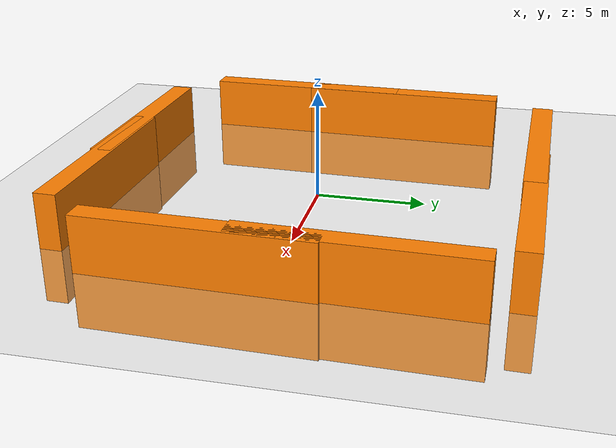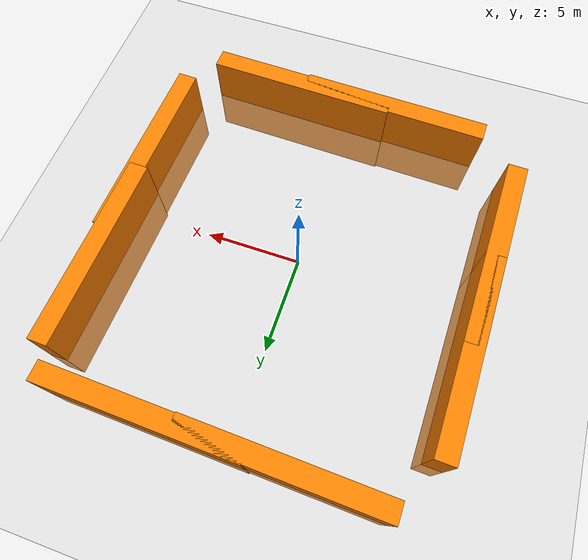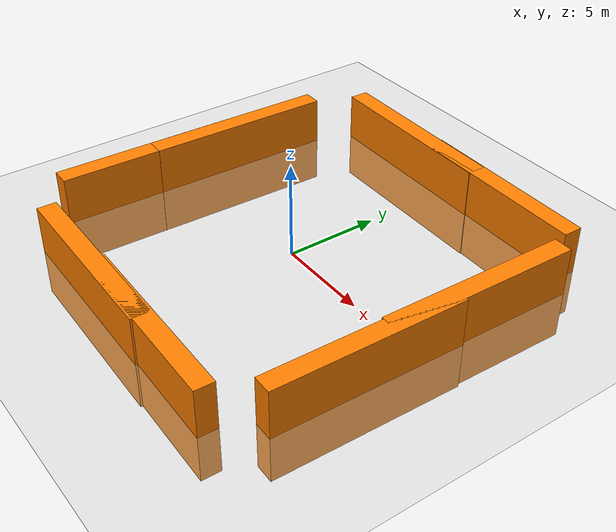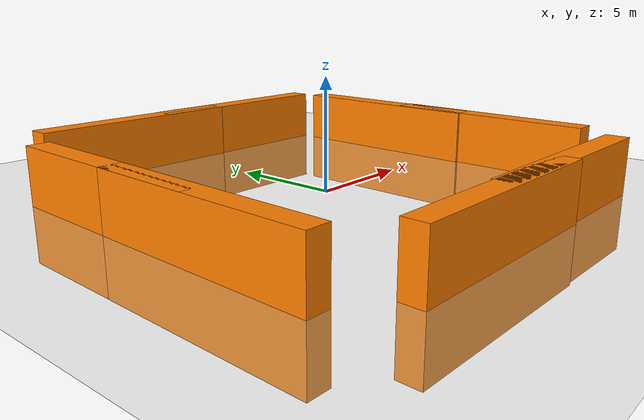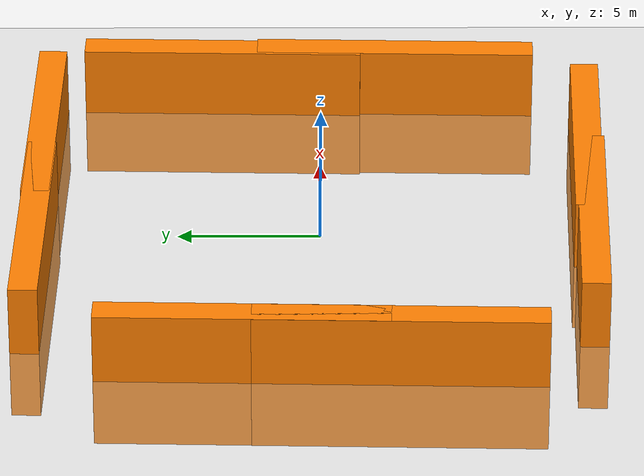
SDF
<sdf version="1.7">
 <world name="default">
  <light name="sun" type="directional">
   <pose>0 0 10 0 -0 0</pose>
   <diffuse>0.8 0.8 0.8 1</diffuse>
   <specular>0.2 0.2 0.2 1</specular>
   <attenuation>
    <range>1000</range>
    <constant>0.9</constant>
    <linear>0.01</linear>
    <quadratic>0.001</quadratic>
   </attenuation>
   <direction>-0.5 0.1 -0.9</direction>
   <spot><inner_angle>0</inner_angle><outer_angle>0</outer_angle><falloff>0</falloff></spot>
  </light>
  <model name="ground_plane">
   <static>1</static>
   <link name="link">
    <collision name="collision">
     <geometry><plane><normal>0 0 1</normal><size>100 100</size></plane></geometry>
     <surface>
      <contact><collide_bitmask>65535</collide_bitmask></contact>
      <friction><ode><mu>100</mu><mu2>50</mu2></ode></friction>
     </surface>
    </collision>
    <visual name="visual">
     <cast_shadows>0</cast_shadows>
     <geometry><plane><normal>0 0 1</normal><size>100 100</size></plane></geometry>
     <material>
      <script><uri>file://media/materials/scripts/gazebo.material</uri><name>Gazebo/Grey</name></script>
     </material>
    </visual>
   </link>
  </model>
  <gravity>0 0 -9.8</gravity>
  <magnetic_field>6e-06 2.3e-05 -4.2e-05</magnetic_field>
  <atmosphere type="adiabatic"/>
  <physics type="ode">
   <max_step_size>0.001</max_step_size>
   <real_time_factor>1</real_time_factor>
   <real_time_update_rate>1000</real_time_update_rate>
  </physics>
  <scene><ambient>0.4 0.4 0.4 1</ambient><background>0.7 0.7 0.7 1</background><shadows>1</shadows></scene>
  <audio><device>default</device></audio>
  <spherical_coordinates>
   <surface_model>EARTH_WGS84</surface_model>
   <latitude_deg>0</latitude_deg>
   <longitude_deg>0</longitude_deg>
   <elevation>0</elevation>
   <heading_deg>0</heading_deg>
  </spherical_coordinates>
  <model name="wall">
   <link name="link">
    <inertial>
     <mass>10000</mass>
     <inertia><ixx>1666.67</ixx><ixy>0</ixy><ixz>0</ixz><iyy>1666.67</iyy><iyz>0</iyz><izz>1666.67</izz></inertia>
    </inertial>
    <self_collide>1</self_collide>
    <kinematic>1</kinematic>
    <visual name="visual">
     <geometry><box><size>1 10 5</size></box></geometry>
     <material>
      <script><name>Gazebo/Grey</name><uri>file://media/materials/scripts/gazebo.material</uri></script>
      <shader type="pixel"><normal_map>__default__</normal_map></shader>
      <ambient>1 0.5 0 1</ambient>
      <diffuse>1 0.5 0 1</diffuse>
      <specular>0.2 0.1 0 1</specular>
      <emissive>0.1 0.05 0 1</emissive>
     </material>
    </visual>
    <collision name="collision">
     <geometry><box><size>1 10 5</size></box></geometry>
     <surface>
      <friction>
       <ode><mu>1</mu><mu2>1</mu2><fdir1>0 0 0</fdir1><slip1>0</slip1><slip2>0</slip2></ode>
       <torsional>
        <coefficient>1</coefficient>
        <patch_radius>0</patch_radius>
        <surface_radius>0</surface_radius>
        <use_patch_radius>1</use_patch_radius>
        <ode><slip>0</slip></ode>
       </torsional>
      </friction>
      <bounce><restitution_coefficient>0</restitution_coefficient><threshold>1e+06</threshold></bounce>
      <contact>
       <collide_without_contact>0</collide_without_contact>
       <collide_without_contact_bitmask>1</collide_without_contact_bitmask>
       <collide_bitmask>1</collide_bitmask>
       <ode>
        <soft_cfm>0</soft_cfm>
        <soft_erp>0.2</soft_erp>
        <kp>1e+13</kp>
        <kd>1</kd>
        <max_vel>0.01</max_vel>
        <min_depth>0</min_depth>
       </ode>
       <bullet>
        <split_impulse>1</split_impulse>
        <split_impulse_penetration_threshold>-0.01</split_impulse_penetration_threshold>
        <soft_cfm>0</soft_cfm>
        <soft_erp>0.2</soft_erp>
        <kp>1e+13</kp>
        <kd>1</kd>
       </bullet>
      </contact>
     </surface>
    </collision>
   </link>
   <static>0</static>
   <pose>2.9215 -9.41762 0 0 0 -1.59641</pose>
  </model>
  <model name="wall_clone">
   <link name="link">
    <inertial>
     <mass>10000</mass>
     <inertia><ixx>1666.67</ixx><ixy>0</ixy><ixz>0</ixz><iyy>1666.67</iyy><iyz>0</iyz><izz>1666.67</izz></inertia>
    </inertial>
    <self_collide>1</self_collide>
    <kinematic>1</kinematic>
    <visual name="visual">
     <geometry><box><size>1 10 5</size></box></geometry>
     <material>
      <script><name>Gazebo/Grey</name><uri>file://media/materials/scripts/gazebo.material</uri></script>
      <shader type="pixel"><normal_map>__default__</normal_map></shader>
      <ambient>1 0.5 0 1</ambient>
      <diffuse>1 0.5 0 1</diffuse>
      <specular>0.2 0.1 0 1</specular>
      <emissive>0.1 0.05 0 1</emissive>
     </material>
    </visual>
    <collision name="collision">
     <geometry><box><size>1 10 5</size></box></geometry>
     <surface>
      <friction>
       <ode><mu>1</mu><mu2>1</mu2><fdir1>0 0 0</fdir1><slip1>0</slip1><slip2>0</slip2></ode>
       <torsional>
        <coefficient>1</coefficient>
        <patch_radius>0</patch_radius>
        <surface_radius>0</surface_radius>
        <use_patch_radius>1</use_patch_radius>
        <ode><slip>0</slip></ode>
       </torsional>
      </friction>
      <bounce><restitution_coefficient>0</restitution_coefficient><threshold>1e+06</threshold></bounce>
      <contact>
       <collide_without_contact>0</collide_without_contact>
       <collide_without_contact_bitmask>1</collide_without_contact_bitmask>
       <collide_bitmask>1</collide_bitmask>
       <ode>
        <soft_cfm>0</soft_cfm>
        <soft_erp>0.2</soft_erp>
        <kp>1e+13</kp>
        <kd>1</kd>
        <max_vel>0.01</max_vel>
        <min_depth>0</min_depth>
       </ode>
       <bullet>
        <split_impulse>1</split_impulse>
        <split_impulse_penetration_threshold>-0.01</split_impulse_penetration_threshold>
        <soft_cfm>0</soft_cfm>
        <soft_erp>0.2</soft_erp>
        <kp>1e+13</kp>
        <kd>1</kd>
       </bullet>
      </contact>
     </surface>
    </collision>
   </link>
   <static>0</static>
   <pose>-2.27459 -9.38568 0 0 0 -1.59641</pose>
  </model>
  <model name="wall_clone_0">
   <link name="link">
    <inertial>
     <mass>10000</mass>
     <inertia><ixx>1666.67</ixx><ixy>0</ixy><ixz>0</ixz><iyy>1666.67</iyy><iyz>0</iyz><izz>1666.67</izz></inertia>
    </inertial>
    <self_collide>1</self_collide>
    <kinematic>1</kinematic>
    <visual name="visual">
     <geometry><box><size>1 10 5</size></box></geometry>
     <material>
      <script><name>Gazebo/Grey</name><uri>file://media/materials/scripts/gazebo.material</uri></script>
      <shader type="pixel"><normal_map>__default__</normal_map></shader>
      <ambient>1 0.5 0 1</ambient>
      <diffuse>1 0.5 0 1</diffuse>
      <specular>0.2 0.1 0 1</specular>
      <emissive>0.1 0.05 0 1</emissive>
     </material>
    </visual>
    <collision name="collision">
     <geometry><box><size>1 10 5</size></box></geometry>
     <surface>
      <friction>
       <ode><mu>1</mu><mu2>1</mu2><fdir1>0 0 0</fdir1><slip1>0</slip1><slip2>0</slip2></ode>
       <torsional>
        <coefficient>1</coefficient>
        <patch_radius>0</patch_radius>
        <surface_radius>0</surface_radius>
        <use_patch_radius>1</use_patch_radius>
        <ode><slip>0</slip></ode>
       </torsional>
      </friction>
      <bounce><restitution_coefficient>0</restitution_coefficient><threshold>1e+06</threshold></bounce>
      <contact>
       <collide_without_contact>0</collide_without_contact>
       <collide_without_contact_bitmask>1</collide_without_contact_bitmask>
       <collide_bitmask>1</collide_bitmask>
       <ode>
        <soft_cfm>0</soft_cfm>
        <soft_erp>0.2</soft_erp>
        <kp>1e+13</kp>
        <kd>1</kd>
        <max_vel>0.01</max_vel>
        <min_depth>0</min_depth>
       </ode>
       <bullet>
        <split_impulse>1</split_impulse>
        <split_impulse_penetration_threshold>-0.01</split_impulse_penetration_threshold>
        <soft_cfm>0</soft_cfm>
        <soft_erp>0.2</soft_erp>
        <kp>1e+13</kp>
        <kd>1</kd>
       </bullet>
      </contact>
     </surface>
    </collision>
   </link>
   <static>0</static>
   <pose>3.94528 9.79326 0 0 0 -1.59641</pose>
  </model>
  <model name="wall_clone_1">
   <link name="link">
    <inertial>
     <mass>10000</mass>
     <inertia><ixx>1666.67</ixx><ixy>0</ixy><ixz>0</ixz><iyy>1666.67</iyy><iyz>0</iyz><izz>1666.67</izz></inertia>
    </inertial>
    <self_collide>1</self_collide>
    <kinematic>1</kinematic>
    <visual name="visual">
     <geometry><box><size>1 10 5</size></box></geometry>
     <material>
      <script><name>Gazebo/Grey</name><uri>file://media/materials/scripts/gazebo.material</uri></script>
      <shader type="pixel"><normal_map>__default__</normal_map></shader>
      <ambient>1 0.5 0 1</ambient>
      <diffuse>1 0.5 0 1</diffuse>
      <specular>0.2 0.1 0 1</specular>
      <emissive>0.1 0.05 0 1</emissive>
     </material>
    </visual>
    <collision name="collision">
     <geometry><box><size>1 10 5</size></box></geometry>
     <surface>
      <friction>
       <ode><mu>1</mu><mu2>1</mu2><fdir1>0 0 0</fdir1><slip1>0</slip1><slip2>0</slip2></ode>
       <torsional>
        <coefficient>1</coefficient>
        <patch_radius>0</patch_radius>
        <surface_radius>0</surface_radius>
        <use_patch_radius>1</use_patch_radius>
        <ode><slip>0</slip></ode>
       </torsional>
      </friction>
      <bounce><restitution_coefficient>0</restitution_coefficient><threshold>1e+06</threshold></bounce>
      <contact>
       <collide_without_contact>0</collide_without_contact>
       <collide_without_contact_bitmask>1</collide_without_contact_bitmask>
       <collide_bitmask>1</collide_bitmask>
       <ode>
        <soft_cfm>0</soft_cfm>
        <soft_erp>0.2</soft_erp>
        <kp>1e+13</kp>
        <kd>1</kd>
        <max_vel>0.01</max_vel>
        <min_depth>0</min_depth>
       </ode>
       <bullet>
        <split_impulse>1</split_impulse>
        <split_impulse_penetration_threshold>-0.01</split_impulse_penetration_threshold>
        <soft_cfm>0</soft_cfm>
        <soft_erp>0.2</soft_erp>
        <kp>1e+13</kp>
        <kd>1</kd>
       </bullet>
      </contact>
     </surface>
    </collision>
   </link>
   <static>0</static>
   <pose>-2.65566 9.92036 0 0 0 -1.59641</pose>
  </model>
  <model name="wall_clone_2">
   <link name="link">
    <inertial>
     <mass>10000</mass>
     <inertia><ixx>1666.67</ixx><ixy>0</ixy><ixz>0</ixz><iyy>1666.67</iyy><iyz>0</iyz><izz>1666.67</izz></inertia>
    </inertial>
    <self_collide>1</self_collide>
    <kinematic>1</kinematic>
    <visual name="visual">
     <geometry><box><size>1 10 5</size></box></geometry>
     <material>
      <script><name>Gazebo/Grey</name><uri>file://media/materials/scripts/gazebo.material</uri></script>
      <shader type="pixel"><normal_map>__default__</normal_map></shader>
      <ambient>1 0.5 0 1</ambient>
      <diffuse>1 0.5 0 1</diffuse>
      <specular>0.2 0.1 0 1</specular>
      <emissive>0.1 0.05 0 1</emissive>
     </material>
    </visual>
    <collision name="collision">
     <geometry><box><size>1 10 5</size></box></geometry>
     <surface>
      <friction>
       <ode><mu>1</mu><mu2>1</mu2><fdir1>0 0 0</fdir1><slip1>0</slip1><slip2>0</slip2></ode>
       <torsional>
        <coefficient>1</coefficient>
        <patch_radius>0</patch_radius>
        <surface_radius>0</surface_radius>
        <use_patch_radius>1</use_patch_radius>
        <ode><slip>0</slip></ode>
       </torsional>
      </friction>
      <bounce><restitution_coefficient>0</restitution_coefficient><threshold>1e+06</threshold></bounce>
      <contact>
       <collide_without_contact>0</collide_without_contact>
       <collide_without_contact_bitmask>1</collide_without_contact_bitmask>
       <collide_bitmask>1</collide_bitmask>
       <ode>
        <soft_cfm>0</soft_cfm>
        <soft_erp>0.2</soft_erp>
        <kp>1e+13</kp>
        <kd>1</kd>
        <max_vel>0.01</max_vel>
        <min_depth>0</min_depth>
       </ode>
       <bullet>
        <split_impulse>1</split_impulse>
        <split_impulse_penetration_threshold>-0.01</split_impulse_penetration_threshold>
        <soft_cfm>0</soft_cfm>
        <soft_erp>0.2</soft_erp>
        <kp>1e+13</kp>
        <kd>1</kd>
       </bullet>
      </contact>
     </surface>
    </collision>
   </link>
   <static>0</static>
   <pose>9.26803 3.52237 0 0 -0 3.11561</pose>
  </model>
  <model name="wall_clone_2_clone">
   <link name="link">
    <inertial>
     <mass>10000</mass>
     <inertia><ixx>1666.67</ixx><ixy>0</ixy><ixz>0</ixz><iyy>1666.67</iyy><iyz>0</iyz><izz>1666.67</izz></inertia>
    </inertial>
    <self_collide>1</self_collide>
    <kinematic>1</kinematic>
    <visual name="visual">
     <geometry><box><size>1 10 5</size></box></geometry>
     <material>
      <script><name>Gazebo/Grey</name><uri>file://media/materials/scripts/gazebo.material</uri></script>
      <shader type="pixel"><normal_map>__default__</normal_map></shader>
      <ambient>1 0.5 0 1</ambient>
      <diffuse>1 0.5 0 1</diffuse>
      <specular>0.2 0.1 0 1</specular>
      <emissive>0.1 0.05 0 1</emissive>
     </material>
    </visual>
    <collision name="collision">
     <geometry><box><size>1 10 5</size></box></geometry>
     <surface>
      <friction>
       <ode><mu>1</mu><mu2>1</mu2><fdir1>0 0 0</fdir1><slip1>0</slip1><slip2>0</slip2></ode>
       <torsional>
        <coefficient>1</coefficient>
        <patch_radius>0</patch_radius>
        <surface_radius>0</surface_radius>
        <use_patch_radius>1</use_patch_radius>
        <ode><slip>0</slip></ode>
       </torsional>
      </friction>
      <bounce><restitution_coefficient>0</restitution_coefficient><threshold>1e+06</threshold></bounce>
      <contact>
       <collide_without_contact>0</collide_without_contact>
       <collide_without_contact_bitmask>1</collide_without_contact_bitmask>
       <collide_bitmask>1</collide_bitmask>
       <ode>
        <soft_cfm>0</soft_cfm>
        <soft_erp>0.2</soft_erp>
        <kp>1e+13</kp>
        <kd>1</kd>
        <max_vel>0.01</max_vel>
        <min_depth>0</min_depth>
       </ode>
       <bullet>
        <split_impulse>1</split_impulse>
        <split_impulse_penetration_threshold>-0.01</split_impulse_penetration_threshold>
        <soft_cfm>0</soft_cfm>
        <soft_erp>0.2</soft_erp>
        <kp>1e+13</kp>
        <kd>1</kd>
       </bullet>
      </contact>
     </surface>
    </collision>
   </link>
   <static>0</static>
   <pose>9.22442 -2.73676 0 0 -0 3.11561</pose>
  </model>
  <model name="wall_clone_2_clone_0">
   <link name="link">
    <inertial>
     <mass>10000</mass>
     <inertia><ixx>1666.67</ixx><ixy>0</ixy><ixz>0</ixz><iyy>1666.67</iyy><iyz>0</iyz><izz>1666.67</izz></inertia>
    </inertial>
    <self_collide>1</self_collide>
    <kinematic>1</kinematic>
    <visual name="visual">
     <geometry><box><size>1 10 5</size></box></geometry>
     <material>
      <script><name>Gazebo/Grey</name><uri>file://media/materials/scripts/gazebo.material</uri></script>
      <shader type="pixel"><normal_map>__default__</normal_map></shader>
      <ambient>1 0.5 0 1</ambient>
      <diffuse>1 0.5 0 1</diffuse>
      <specular>0.2 0.1 0 1</specular>
      <emissive>0.1 0.05 0 1</emissive>
     </material>
    </visual>
    <collision name="collision">
     <geometry><box><size>1 10 5</size></box></geometry>
     <surface>
      <friction>
       <ode><mu>1</mu><mu2>1</mu2><fdir1>0 0 0</fdir1><slip1>0</slip1><slip2>0</slip2></ode>
       <torsional>
        <coefficient>1</coefficient>
        <patch_radius>0</patch_radius>
        <surface_radius>0</surface_radius>
        <use_patch_radius>1</use_patch_radius>
        <ode><slip>0</slip></ode>
       </torsional>
      </friction>
      <bounce><restitution_coefficient>0</restitution_coefficient><threshold>1e+06</threshold></bounce>
      <contact>
       <collide_without_contact>0</collide_without_contact>
       <collide_without_contact_bitmask>1</collide_without_contact_bitmask>
       <collide_bitmask>1</collide_bitmask>
       <ode>
        <soft_cfm>0</soft_cfm>
        <soft_erp>0.2</soft_erp>
        <kp>1e+13</kp>
        <kd>1</kd>
        <max_vel>0.01</max_vel>
        <min_depth>0</min_depth>
       </ode>
       <bullet>
        <split_impulse>1</split_impulse>
        <split_impulse_penetration_threshold>-0.01</split_impulse_penetration_threshold>
        <soft_cfm>0</soft_cfm>
        <soft_erp>0.2</soft_erp>
        <kp>1e+13</kp>
        <kd>1</kd>
       </bullet>
      </contact>
     </surface>
    </collision>
   </link>
   <static>0</static>
   <pose>-9.17126 -2.64442 0 0 -0 3.11561</pose>
  </model>
  <model name="wall_clone_2_clone_1">
   <link name="link">
    <inertial>
     <mass>10000</mass>
     <inertia><ixx>1666.67</ixx><ixy>0</ixy><ixz>0</ixz><iyy>1666.67</iyy><iyz>0</iyz><izz>1666.67</izz></inertia>
    </inertial>
    <self_collide>1</self_collide>
    <kinematic>1</kinematic>
    <visual name="visual">
     <geometry><box><size>1 10 5</size></box></geometry>
     <material>
      <script><name>Gazebo/Grey</name><uri>file://media/materials/scripts/gazebo.material</uri></script>
      <shader type="pixel"><normal_map>__default__</normal_map></shader>
      <ambient>1 0.5 0 1</ambient>
      <diffuse>1 0.5 0 1</diffuse>
      <specular>0.2 0.1 0 1</specular>
      <emissive>0.1 0.05 0 1</emissive>
     </material>
    </visual>
    <collision name="collision">
     <geometry><box><size>1 10 5</size></box></geometry>
     <surface>
      <friction>
       <ode><mu>1</mu><mu2>1</mu2><fdir1>0 0 0</fdir1><slip1>0</slip1><slip2>0</slip2></ode>
       <torsional>
        <coefficient>1</coefficient>
        <patch_radius>0</patch_radius>
        <surface_radius>0</surface_radius>
        <use_patch_radius>1</use_patch_radius>
        <ode><slip>0</slip></ode>
       </torsional>
      </friction>
      <bounce><restitution_coefficient>0</restitution_coefficient><threshold>1e+06</threshold></bounce>
      <contact>
       <collide_without_contact>0</collide_without_contact>
       <collide_without_contact_bitmask>1</collide_without_contact_bitmask>
       <collide_bitmask>1</collide_bitmask>
       <ode>
        <soft_cfm>0</soft_cfm>
        <soft_erp>0.2</soft_erp>
        <kp>1e+13</kp>
        <kd>1</kd>
        <max_vel>0.01</max_vel>
        <min_depth>0</min_depth>
       </ode>
       <bullet>
        <split_impulse>1</split_impulse>
        <split_impulse_penetration_threshold>-0.01</split_impulse_penetration_threshold>
        <soft_cfm>0</soft_cfm>
        <soft_erp>0.2</soft_erp>
        <kp>1e+13</kp>
        <kd>1</kd>
       </bullet>
      </contact>
     </surface>
    </collision>
   </link>
   <static>0</static>
   <pose>-9.02798 2.66821 0 0 -0 3.11561</pose>
  </model>
 </world>
</sdf>
